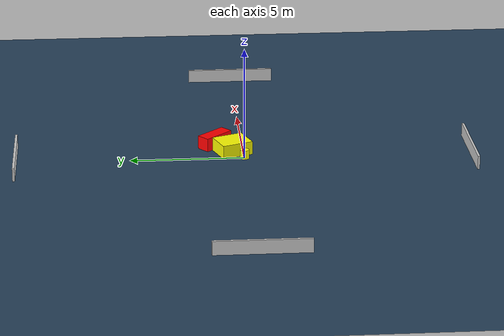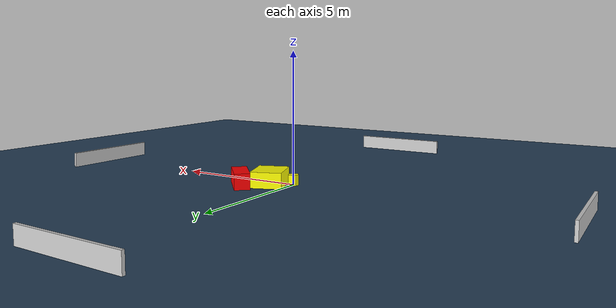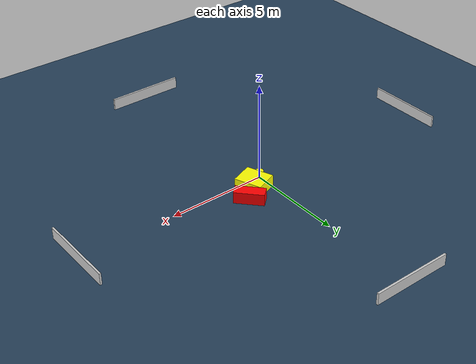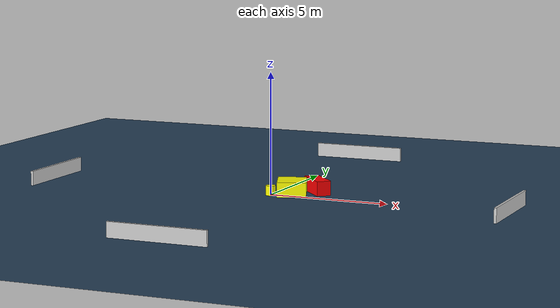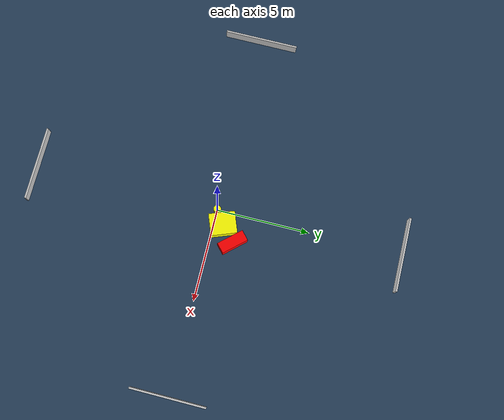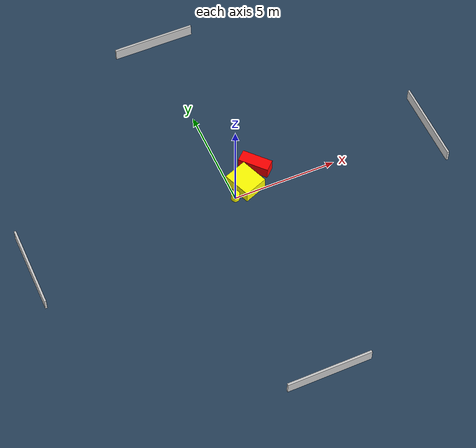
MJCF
<?xml version="1.0" ?>
<mujoco model="generated_environment">
  <option timestep="0.01" integrator="RK4" cone="elliptic"/>
  <default>
    <geom density="1"/>
  </default>
  <asset>
    <texture builtin="gradient" height="3072" name="skybox" rgb1="0.3 0.5 0.7" rgb2="0 0 0" type="skybox" width="512"/>
    <texture builtin="checker" height="300" name="groundplane" rgb1="0.2 0.3 0.4" rgb2="0.1 0.2 0.3" type="2d" width="300"/>
    <material name="groundplane" reflectance="0.2" texrepeat="5 5" texture="groundplane"/>
  </asset>
  <worldbody>
    <light dir="0 0 -1" directional="true" pos="0 0 1.5"/>
    <geom condim="3" friction="0.5 0.005 0.001" material="groundplane" name="floor" pos="0 0 0" size="0 0 0.05" type="plane"/>
    <body name="walls">
      <geom name="wall_1" condim="4" pos="-10.0 0.0 0.3" rgba="0.800000011920929 0.800000011920929 0.800000011920929 1.0" size="0.05 2.0 0.3" type="box"/>
      <geom name="wall_2" condim="4" pos="10.0 0.0 0.3" rgba="0.800000011920929 0.800000011920929 0.800000011920929 1.0" size="0.05 2.0 0.3" type="box"/>
      <geom name="wall_3" condim="4" pos="0.0 -10.0 0.3" rgba="0.800000011920929 0.800000011920929 0.800000011920929 1.0" size="2.0 0.05 0.3" type="box"/>
      <geom name="wall_4" condim="4" pos="0.0 10.0 0.3" rgba="0.800000011920929 0.800000011920929 0.800000011920929 1.0" size="2.0 0.05 0.3" type="box"/>
    </body>
    <body name="robot">
      <joint name="joint_x" type="slide" pos="0 0 0" axis="1 0 0"/>
      <joint name="joint_y" type="slide" pos="0 0 0" axis="0 1 0"/>
      <geom name="robot" type="cylinder" pos="0.0 0.0 0.2" size="0.2 0.2 0.0" mass="5.0" friction="1.0 0.005 0.0001" condim="4" rgba="1.0 1.0 0.0 1.0"/>
    </body>
    <body name="obstacle_1_movable">
      <geom name="obstacle_1_movable" condim="4" pos="0.7268761377774647 0.4859737592057304 0.3" euler="0 0 110.864669788183" friction="0.0 0.005 0.001" rgba="1.0 1.0 0.0 1.0" size="0.700533177021982 0.5874673195648004 0.3" type="box" mass="0.1"/>
      <joint type="free"/>
    </body>
    <body name="obstacle_2_static">
      <geom name="obstacle_2_static" condim="4" pos="1.5530781408113195 1.2177094792422476 0.3" euler="0 0 222.29529453975965" friction="0.0 0.005 0.001" rgba="1.0 0.0 0.0 1.0" size="0.2940475468803208 0.7399679667801229 0.3" type="box"/>
    </body>
  </worldbody>
  <actuator>
    <motor name="actuator_x" joint="joint_x" gear="1" ctrlrange="-1 1"/>
    <motor name="actuator_y" joint="joint_y" gear="1" ctrlrange="-1 1"/>
  </actuator>
</mujoco>
